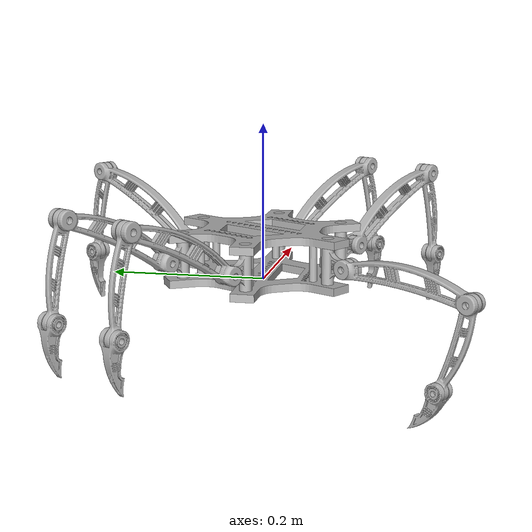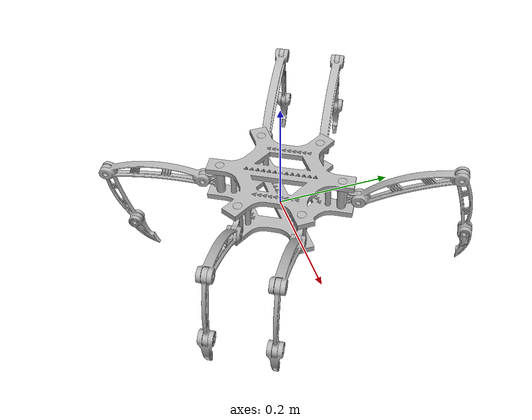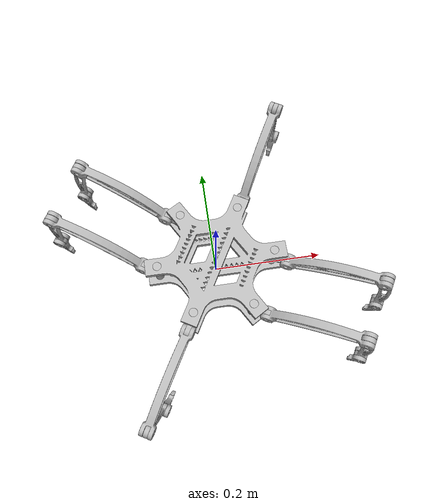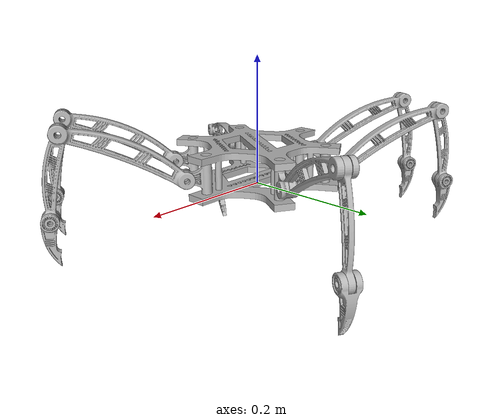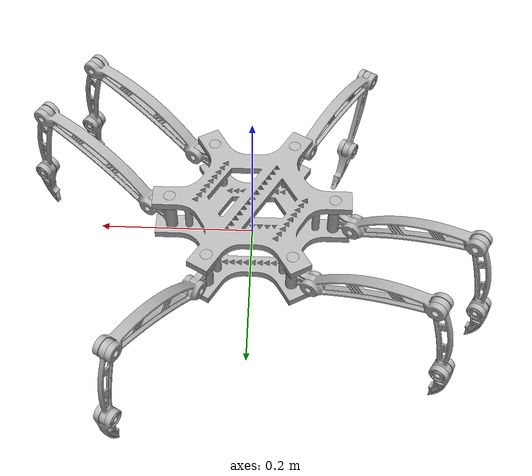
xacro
<?xml version="1.0" ?>
<robot name="spiderbot_urdf_model_final" xmlns:xacro="http://www.ros.org/wiki/xacro">

<xacro:include filename="$(find spiderbot_urdf_model_final_description)/urdf/materials.xacro" />
<xacro:include filename="$(find spiderbot_urdf_model_final_description)/urdf/spiderbot_urdf_model_final.trans" />
<xacro:include filename="$(find spiderbot_urdf_model_final_description)/urdf/spiderbot_urdf_model_final.gazebo" />
<link name="base_link">
  <inertial>
    <origin rpy="0 0 0" xyz="2.6809392293062096e-05 -4.643522955664628e-05 0.033799999999999816"/>
    <mass value="3.423316766776228"/>
    <inertia ixx="0.013718" ixy="-0.000137" ixz="8e-06" iyy="0.013876" iyz="5e-06" izz="0.022087"/>
  </inertial>
  <visual>
    <origin rpy="0 0 0" xyz="0 0 0"/>
    <geometry>
      <mesh filename="package://spiderbot_urdf_model_final_description/meshes/base_link.stl" scale="0.001 0.001 0.001"/>
    </geometry>
    <material name="silver"/>
  </visual>
  <collision>
    <origin rpy="0 0 0" xyz="0 0 0"/>
    <geometry>
      <mesh filename="package://spiderbot_urdf_model_final_description/meshes/base_link.stl" scale="0.001 0.001 0.001"/>
    </geometry>
  </collision>
</link>

<link name="L3_1">
  <inertial>
    <origin rpy="0 0 0" xyz="-9.535726718429283e-05 0.0089554467100606 -0.01512831865838865"/>
    <mass value="0.08507758327600112"/>
    <inertia ixx="3.3e-05" ixy="-3e-06" ixz="6e-06" iyy="2.9e-05" iyz="1.1e-05" izz="1.4e-05"/>
  </inertial>
  <visual>
    <origin rpy="0 0 0" xyz="0.133449 0.2402 0.093132"/>
    <geometry>
      <mesh filename="package://spiderbot_urdf_model_final_description/meshes/L3_1.stl" scale="0.001 0.001 0.001"/>
    </geometry>
    <material name="silver"/>
  </visual>
  <collision>
    <origin rpy="0 0 0" xyz="0.133449 0.2402 0.093132"/>
    <geometry>
      <mesh filename="package://spiderbot_urdf_model_final_description/meshes/L3_1.stl" scale="0.001 0.001 0.001"/>
    </geometry>
  </collision>
</link>

<link name="L2_1">
  <inertial>
    <origin rpy="0 0 0" xyz="0.0054481249084034344 0.018378388735601603 -0.05539905539281395"/>
    <mass value="0.10556026695885269"/>
    <inertia ixx="0.000242" ixy="-1.4e-05" ixz="3.8e-05" iyy="0.000226" iyz="6.6e-05" izz="3.3e-05"/>
  </inertial>
  <visual>
    <origin rpy="0 0 0" xyz="0.153946 0.275642 -0.019668"/>
    <geometry>
      <mesh filename="package://spiderbot_urdf_model_final_description/meshes/L2_1.stl" scale="0.001 0.001 0.001"/>
    </geometry>
    <material name="silver"/>
  </visual>
  <collision>
    <origin rpy="0 0 0" xyz="0.153946 0.275642 -0.019668"/>
    <geometry>
      <mesh filename="package://spiderbot_urdf_model_final_description/meshes/L2_1.stl" scale="0.001 0.001 0.001"/>
    </geometry>
  </collision>
</link>

<link name="L1_1">
  <inertial>
    <origin rpy="0 0 0" xyz="-0.04810589100224351 -0.0741378061694888 -0.0027082795290349244"/>
    <mass value="0.29510328391513424"/>
    <inertia ixx="0.000952" ixy="-0.000525" ixz="-4.4e-05" iyy="0.000346" iyz="-7.6e-05" izz="0.001232"/>
  </inertial>
  <visual>
    <origin rpy="0 0 0" xyz="0.064223 0.120238 -0.0338"/>
    <geometry>
      <mesh filename="package://spiderbot_urdf_model_final_description/meshes/L1_1.stl" scale="0.001 0.001 0.001"/>
    </geometry>
    <material name="silver"/>
  </visual>
  <collision>
    <origin rpy="0 0 0" xyz="0.064223 0.120238 -0.0338"/>
    <geometry>
      <mesh filename="package://spiderbot_urdf_model_final_description/meshes/L1_1.stl" scale="0.001 0.001 0.001"/>
    </geometry>
  </collision>
</link>

<link name="Hinge_1">
  <inertial>
    <origin rpy="0 0 0" xyz="-0.003170256289144212 -0.005491189080670492 -0.0337999999999949"/>
    <mass value="0.13570338096793705"/>
    <inertia ixx="5.6e-05" ixy="-8e-06" ixz="0.0" iyy="4.7e-05" iyz="0.0" izz="2.3e-05"/>
  </inertial>
  <visual>
    <origin rpy="0 0 0" xyz="0.053121 0.092008 -0.0676"/>
    <geometry>
      <mesh filename="package://spiderbot_urdf_model_final_description/meshes/Hinge_1.stl" scale="0.001 0.001 0.001"/>
    </geometry>
    <material name="silver"/>
  </visual>
  <collision>
    <origin rpy="0 0 0" xyz="0.053121 0.092008 -0.0676"/>
    <geometry>
      <mesh filename="package://spiderbot_urdf_model_final_description/meshes/Hinge_1.stl" scale="0.001 0.001 0.001"/>
    </geometry>
  </collision>
</link>

<link name="L3_2">
  <inertial>
    <origin rpy="0 0 0" xyz="-0.0014905093816917903 -0.004360052749155741 -0.016955511504603792"/>
    <mass value="0.08507758327600112"/>
    <inertia ixx="3.5e-05" ixy="-0.0" ixz="-1e-06" iyy="3.5e-05" iyz="0.0" izz="6e-06"/>
  </inertial>
  <visual>
    <origin rpy="0 0 0" xyz="-0.240191 0.194817 0.006875"/>
    <geometry>
      <mesh filename="package://spiderbot_urdf_model_final_description/meshes/L3_2.stl" scale="0.001 0.001 0.001"/>
    </geometry>
    <material name="silver"/>
  </visual>
  <collision>
    <origin rpy="0 0 0" xyz="-0.240191 0.194817 0.006875"/>
    <geometry>
      <mesh filename="package://spiderbot_urdf_model_final_description/meshes/L3_2.stl" scale="0.001 0.001 0.001"/>
    </geometry>
  </collision>
</link>

<link name="L2_2">
  <inertial>
    <origin rpy="0 0 0" xyz="0.0077730568438748315 -0.00965074089206519 -0.05729636494851689"/>
    <mass value="0.10556026695885269"/>
    <inertia ixx="0.000241" ixy="5e-06" ixz="3.6e-05" iyy="0.000247" iyz="-2.1e-05" izz="1.3e-05"/>
  </inertial>
  <visual>
    <origin rpy="0 0 0" xyz="-0.222054 0.184345 -0.111283"/>
    <geometry>
      <mesh filename="package://spiderbot_urdf_model_final_description/meshes/L2_2.stl" scale="0.001 0.001 0.001"/>
    </geometry>
    <material name="silver"/>
  </visual>
  <collision>
    <origin rpy="0 0 0" xyz="-0.222054 0.184345 -0.111283"/>
    <geometry>
      <mesh filename="package://spiderbot_urdf_model_final_description/meshes/L2_2.stl" scale="0.001 0.001 0.001"/>
    </geometry>
  </collision>
</link>

<link name="L1_2">
  <inertial>
    <origin rpy="0 0 0" xyz="0.0650704277368272 -0.04287078558611905 0.04178339207835309"/>
    <mass value="0.29510328391513424"/>
    <inertia ixx="0.000512" ixy="0.000429" ixz="-0.000408" iyy="0.001008" iyz="0.000236" izz="0.001011"/>
  </inertial>
  <visual>
    <origin rpy="0 0 0" xyz="-0.081351 0.10311 -0.0338"/>
    <geometry>
      <mesh filename="package://spiderbot_urdf_model_final_description/meshes/L1_2.stl" scale="0.001 0.001 0.001"/>
    </geometry>
    <material name="silver"/>
  </visual>
  <collision>
    <origin rpy="0 0 0" xyz="-0.081351 0.10311 -0.0338"/>
    <geometry>
      <mesh filename="package://spiderbot_urdf_model_final_description/meshes/L1_2.stl" scale="0.001 0.001 0.001"/>
    </geometry>
  </collision>
</link>

<link name="Hinge_2">
  <inertial>
    <origin rpy="0 0 0" xyz="0.005491222070922848 -0.0031702232988920914 -0.03379999999999489"/>
    <mass value="0.13570338096793705"/>
    <inertia ixx="4.7e-05" ixy="8e-06" ixz="-0.0" iyy="5.6e-05" iyz="0.0" izz="2.3e-05"/>
  </inertial>
  <visual>
    <origin rpy="0 0 0" xyz="-0.053121 0.092008 -0.0676"/>
    <geometry>
      <mesh filename="package://spiderbot_urdf_model_final_description/meshes/Hinge_2.stl" scale="0.001 0.001 0.001"/>
    </geometry>
    <material name="silver"/>
  </visual>
  <collision>
    <origin rpy="0 0 0" xyz="-0.053121 0.092008 -0.0676"/>
    <geometry>
      <mesh filename="package://spiderbot_urdf_model_final_description/meshes/Hinge_2.stl" scale="0.001 0.001 0.001"/>
    </geometry>
  </collision>
</link>

<link name="L3_3">
  <inertial>
    <origin rpy="0 0 0" xyz="-0.0014909245702488527 -0.004360500927964625 -0.016955511504604077"/>
    <mass value="0.08507758327600112"/>
    <inertia ixx="3.5e-05" ixy="-0.0" ixz="-1e-06" iyy="3.5e-05" iyz="0.0" izz="6e-06"/>
  </inertial>
  <visual>
    <origin rpy="0 0 0" xyz="-0.293312 0.102809 0.006875"/>
    <geometry>
      <mesh filename="package://spiderbot_urdf_model_final_description/meshes/L3_3.stl" scale="0.001 0.001 0.001"/>
    </geometry>
    <material name="silver"/>
  </visual>
  <collision>
    <origin rpy="0 0 0" xyz="-0.293312 0.102809 0.006875"/>
    <geometry>
      <mesh filename="package://spiderbot_urdf_model_final_description/meshes/L3_3.stl" scale="0.001 0.001 0.001"/>
    </geometry>
  </collision>
</link>

<link name="L2_3">
  <inertial>
    <origin rpy="0 0 0" xyz="0.0077726416553176025 -0.009650189070874032 -0.05729636494851709"/>
    <mass value="0.10556026695885269"/>
    <inertia ixx="0.000241" ixy="5e-06" ixz="3.6e-05" iyy="0.000247" iyz="-2.1e-05" izz="1.3e-05"/>
  </inertial>
  <visual>
    <origin rpy="0 0 0" xyz="-0.275175 0.092338 -0.111283"/>
    <geometry>
      <mesh filename="package://spiderbot_urdf_model_final_description/meshes/L2_3.stl" scale="0.001 0.001 0.001"/>
    </geometry>
    <material name="silver"/>
  </visual>
  <collision>
    <origin rpy="0 0 0" xyz="-0.275175 0.092338 -0.111283"/>
    <geometry>
      <mesh filename="package://spiderbot_urdf_model_final_description/meshes/L2_3.stl" scale="0.001 0.001 0.001"/>
    </geometry>
  </collision>
</link>

<link name="L1_3">
  <inertial>
    <origin rpy="0 0 0" xyz="0.06507001254826986 -0.04287023376492771 0.04178339207835281"/>
    <mass value="0.29510328391513424"/>
    <inertia ixx="0.000512" ixy="0.000429" ixz="-0.000408" iyy="0.001008" iyz="0.000236" izz="0.001011"/>
  </inertial>
  <visual>
    <origin rpy="0 0 0" xyz="-0.134472 0.011103 -0.0338"/>
    <geometry>
      <mesh filename="package://spiderbot_urdf_model_final_description/meshes/L1_3.stl" scale="0.001 0.001 0.001"/>
    </geometry>
    <material name="silver"/>
  </visual>
  <collision>
    <origin rpy="0 0 0" xyz="-0.134472 0.011103 -0.0338"/>
    <geometry>
      <mesh filename="package://spiderbot_urdf_model_final_description/meshes/L1_3.stl" scale="0.001 0.001 0.001"/>
    </geometry>
  </collision>
</link>

<link name="Hinge_3">
  <inertial>
    <origin rpy="0 0 0" xyz="0.005491806882365571 -0.0031706714777008215 -0.03379999999999489"/>
    <mass value="0.13570338096793705"/>
    <inertia ixx="4.7e-05" ixy="8e-06" ixz="-0.0" iyy="5.6e-05" iyz="0.0" izz="2.3e-05"/>
  </inertial>
  <visual>
    <origin rpy="0 0 0" xyz="-0.106241 -0.0 -0.0676"/>
    <geometry>
      <mesh filename="package://spiderbot_urdf_model_final_description/meshes/Hinge_3.stl" scale="0.001 0.001 0.001"/>
    </geometry>
    <material name="silver"/>
  </visual>
  <collision>
    <origin rpy="0 0 0" xyz="-0.106241 -0.0 -0.0676"/>
    <geometry>
      <mesh filename="package://spiderbot_urdf_model_final_description/meshes/Hinge_3.stl" scale="0.001 0.001 0.001"/>
    </geometry>
  </collision>
</link>

<link name="L3_4">
  <inertial>
    <origin rpy="0 0 0" xyz="0.004360085739407937 -0.0014905423719440147 -0.016955511504604264"/>
    <mass value="0.08507758327600112"/>
    <inertia ixx="3.5e-05" ixy="0.0" ixz="-0.0" iyy="3.5e-05" iyz="-1e-06" izz="6e-06"/>
  </inertial>
  <visual>
    <origin rpy="0 0 0" xyz="-0.15593 -0.279078 0.006875"/>
    <geometry>
      <mesh filename="package://spiderbot_urdf_model_final_description/meshes/L3_4.stl" scale="0.001 0.001 0.001"/>
    </geometry>
    <material name="silver"/>
  </visual>
  <collision>
    <origin rpy="0 0 0" xyz="-0.15593 -0.279078 0.006875"/>
    <geometry>
      <mesh filename="package://spiderbot_urdf_model_final_description/meshes/L3_4.stl" scale="0.001 0.001 0.001"/>
    </geometry>
  </collision>
</link>

<link name="L2_4">
  <inertial>
    <origin rpy="0 0 0" xyz="0.009650773882317387 0.0077730238536225515 -0.05729636494851703"/>
    <mass value="0.10556026695885269"/>
    <inertia ixx="0.000247" ixy="-5e-06" ixz="2.1e-05" iyy="0.000241" iyz="3.6e-05" izz="1.3e-05"/>
  </inertial>
  <visual>
    <origin rpy="0 0 0" xyz="-0.145458 -0.260941 -0.111283"/>
    <geometry>
      <mesh filename="package://spiderbot_urdf_model_final_description/meshes/L2_4.stl" scale="0.001 0.001 0.001"/>
    </geometry>
    <material name="silver"/>
  </visual>
  <collision>
    <origin rpy="0 0 0" xyz="-0.145458 -0.260941 -0.111283"/>
    <geometry>
      <mesh filename="package://spiderbot_urdf_model_final_description/meshes/L2_4.stl" scale="0.001 0.001 0.001"/>
    </geometry>
  </collision>
</link>

<link name="L1_4">
  <inertial>
    <origin rpy="0 0 0" xyz="0.04287081857637112 0.06507039474657487 0.041783392078352966"/>
    <mass value="0.29510328391513424"/>
    <inertia ixx="0.001008" ixy="-0.000429" ixz="-0.000236" iyy="0.000512" iyz="-0.000408" izz="0.001011"/>
  </inertial>
  <visual>
    <origin rpy="0 0 0" xyz="-0.064223 -0.120238 -0.0338"/>
    <geometry>
      <mesh filename="package://spiderbot_urdf_model_final_description/meshes/L1_4.stl" scale="0.001 0.001 0.001"/>
    </geometry>
    <material name="silver"/>
  </visual>
  <collision>
    <origin rpy="0 0 0" xyz="-0.064223 -0.120238 -0.0338"/>
    <geometry>
      <mesh filename="package://spiderbot_urdf_model_final_description/meshes/L1_4.stl" scale="0.001 0.001 0.001"/>
    </geometry>
  </collision>
</link>

<link name="Hinge_4">
  <inertial>
    <origin rpy="0 0 0" xyz="0.0031702562891442188 0.005491189080670492 -0.0337999999999949"/>
    <mass value="0.13570338096793705"/>
    <inertia ixx="5.6e-05" ixy="-8e-06" ixz="-0.0" iyy="4.7e-05" iyz="-0.0" izz="2.3e-05"/>
  </inertial>
  <visual>
    <origin rpy="0 0 0" xyz="-0.053121 -0.092008 -0.0676"/>
    <geometry>
      <mesh filename="package://spiderbot_urdf_model_final_description/meshes/Hinge_4.stl" scale="0.001 0.001 0.001"/>
    </geometry>
    <material name="silver"/>
  </visual>
  <collision>
    <origin rpy="0 0 0" xyz="-0.053121 -0.092008 -0.0676"/>
    <geometry>
      <mesh filename="package://spiderbot_urdf_model_final_description/meshes/Hinge_4.stl" scale="0.001 0.001 0.001"/>
    </geometry>
  </collision>
</link>

<link name="L3_5">
  <inertial>
    <origin rpy="0 0 0" xyz="0.0014905093816914294 0.004360052749155213 -0.016955511504603997"/>
    <mass value="0.08507758327600112"/>
    <inertia ixx="3.5e-05" ixy="-0.0" ixz="1e-06" iyy="3.5e-05" iyz="-0.0" izz="6e-06"/>
  </inertial>
  <visual>
    <origin rpy="0 0 0" xyz="0.240191 -0.194817 0.006875"/>
    <geometry>
      <mesh filename="package://spiderbot_urdf_model_final_description/meshes/L3_5.stl" scale="0.001 0.001 0.001"/>
    </geometry>
    <material name="silver"/>
  </visual>
  <collision>
    <origin rpy="0 0 0" xyz="0.240191 -0.194817 0.006875"/>
    <geometry>
      <mesh filename="package://spiderbot_urdf_model_final_description/meshes/L3_5.stl" scale="0.001 0.001 0.001"/>
    </geometry>
  </collision>
</link>

<link name="L2_5">
  <inertial>
    <origin rpy="0 0 0" xyz="-0.007773056843875387 0.009650740892064524 -0.057296364948517"/>
    <mass value="0.10556026695885269"/>
    <inertia ixx="0.000241" ixy="5e-06" ixz="-3.6e-05" iyy="0.000247" iyz="2.1e-05" izz="1.3e-05"/>
  </inertial>
  <visual>
    <origin rpy="0 0 0" xyz="0.222054 -0.184345 -0.111283"/>
    <geometry>
      <mesh filename="package://spiderbot_urdf_model_final_description/meshes/L2_5.stl" scale="0.001 0.001 0.001"/>
    </geometry>
    <material name="silver"/>
  </visual>
  <collision>
    <origin rpy="0 0 0" xyz="0.222054 -0.184345 -0.111283"/>
    <geometry>
      <mesh filename="package://spiderbot_urdf_model_final_description/meshes/L2_5.stl" scale="0.001 0.001 0.001"/>
    </geometry>
  </collision>
</link>

<link name="L1_5">
  <inertial>
    <origin rpy="0 0 0" xyz="-0.06507042773682764 0.04287078558611836 0.04178339207835291"/>
    <mass value="0.29510328391513424"/>
    <inertia ixx="0.000512" ixy="0.000429" ixz="0.000408" iyy="0.001008" iyz="-0.000236" izz="0.001011"/>
  </inertial>
  <visual>
    <origin rpy="0 0 0" xyz="0.081351 -0.10311 -0.0338"/>
    <geometry>
      <mesh filename="package://spiderbot_urdf_model_final_description/meshes/L1_5.stl" scale="0.001 0.001 0.001"/>
    </geometry>
    <material name="silver"/>
  </visual>
  <collision>
    <origin rpy="0 0 0" xyz="0.081351 -0.10311 -0.0338"/>
    <geometry>
      <mesh filename="package://spiderbot_urdf_model_final_description/meshes/L1_5.stl" scale="0.001 0.001 0.001"/>
    </geometry>
  </collision>
</link>

<link name="Hinge_5">
  <inertial>
    <origin rpy="0 0 0" xyz="-0.005491222070923313 0.0031702232988915086 -0.03379999999999489"/>
    <mass value="0.13570338096793705"/>
    <inertia ixx="4.7e-05" ixy="8e-06" ixz="0.0" iyy="5.6e-05" iyz="-0.0" izz="2.3e-05"/>
  </inertial>
  <visual>
    <origin rpy="0 0 0" xyz="0.053121 -0.092008 -0.0676"/>
    <geometry>
      <mesh filename="package://spiderbot_urdf_model_final_description/meshes/Hinge_5.stl" scale="0.001 0.001 0.001"/>
    </geometry>
    <material name="silver"/>
  </visual>
  <collision>
    <origin rpy="0 0 0" xyz="0.053121 -0.092008 -0.0676"/>
    <geometry>
      <mesh filename="package://spiderbot_urdf_model_final_description/meshes/Hinge_5.stl" scale="0.001 0.001 0.001"/>
    </geometry>
  </collision>
</link>

<link name="L3_6">
  <inertial>
    <origin rpy="0 0 0" xyz="0.0014909245702490748 0.004360500927963612 -0.016955511504603997"/>
    <mass value="0.08507758327600112"/>
    <inertia ixx="3.5e-05" ixy="-0.0" ixz="1e-06" iyy="3.5e-05" iyz="-0.0" izz="6e-06"/>
  </inertial>
  <visual>
    <origin rpy="0 0 0" xyz="0.293312 -0.102809 0.006875"/>
    <geometry>
      <mesh filename="package://spiderbot_urdf_model_final_description/meshes/L3_6.stl" scale="0.001 0.001 0.001"/>
    </geometry>
    <material name="silver"/>
  </visual>
  <collision>
    <origin rpy="0 0 0" xyz="0.293312 -0.102809 0.006875"/>
    <geometry>
      <mesh filename="package://spiderbot_urdf_model_final_description/meshes/L3_6.stl" scale="0.001 0.001 0.001"/>
    </geometry>
  </collision>
</link>

<link name="L2_6">
  <inertial>
    <origin rpy="0 0 0" xyz="-0.007772641655317325 0.009650189070873005 -0.05729636494851696"/>
    <mass value="0.10556026695885269"/>
    <inertia ixx="0.000241" ixy="5e-06" ixz="-3.6e-05" iyy="0.000247" iyz="2.1e-05" izz="1.3e-05"/>
  </inertial>
  <visual>
    <origin rpy="0 0 0" xyz="0.275175 -0.092338 -0.111283"/>
    <geometry>
      <mesh filename="package://spiderbot_urdf_model_final_description/meshes/L2_6.stl" scale="0.001 0.001 0.001"/>
    </geometry>
    <material name="silver"/>
  </visual>
  <collision>
    <origin rpy="0 0 0" xyz="0.275175 -0.092338 -0.111283"/>
    <geometry>
      <mesh filename="package://spiderbot_urdf_model_final_description/meshes/L2_6.stl" scale="0.001 0.001 0.001"/>
    </geometry>
  </collision>
</link>

<link name="L1_6">
  <inertial>
    <origin rpy="0 0 0" xyz="-0.06507001254826972 0.042870233764926755 0.041783392078352896"/>
    <mass value="0.29510328391513424"/>
    <inertia ixx="0.000512" ixy="0.000429" ixz="0.000408" iyy="0.001008" iyz="-0.000236" izz="0.001011"/>
  </inertial>
  <visual>
    <origin rpy="0 0 0" xyz="0.134472 -0.011103 -0.0338"/>
    <geometry>
      <mesh filename="package://spiderbot_urdf_model_final_description/meshes/L1_6.stl" scale="0.001 0.001 0.001"/>
    </geometry>
    <material name="silver"/>
  </visual>
  <collision>
    <origin rpy="0 0 0" xyz="0.134472 -0.011103 -0.0338"/>
    <geometry>
      <mesh filename="package://spiderbot_urdf_model_final_description/meshes/L1_6.stl" scale="0.001 0.001 0.001"/>
    </geometry>
  </collision>
</link>

<link name="Hinge_6">
  <inertial>
    <origin rpy="0 0 0" xyz="-0.005491806882365488 0.0031706714776999333 -0.03379999999999489"/>
    <mass value="0.13570338096793705"/>
    <inertia ixx="4.7e-05" ixy="8e-06" ixz="0.0" iyy="5.6e-05" iyz="-0.0" izz="2.3e-05"/>
  </inertial>
  <visual>
    <origin rpy="0 0 0" xyz="0.106241 0.0 -0.0676"/>
    <geometry>
      <mesh filename="package://spiderbot_urdf_model_final_description/meshes/Hinge_6.stl" scale="0.001 0.001 0.001"/>
    </geometry>
    <material name="silver"/>
  </visual>
  <collision>
    <origin rpy="0 0 0" xyz="0.106241 0.0 -0.0676"/>
    <geometry>
      <mesh filename="package://spiderbot_urdf_model_final_description/meshes/Hinge_6.stl" scale="0.001 0.001 0.001"/>
    </geometry>
  </collision>
</link>

<joint name="Rev28" type="continuous">
  <origin rpy="0 0 0" xyz="0.020497 0.035442 -0.1128"/>
  <parent link="L2_1"/>
  <child link="L3_1"/>
  <axis xyz="-0.866025 0.5 -0.0"/>
</joint>

<joint name="Rev29" type="continuous">
  <origin rpy="0 0 0" xyz="-0.089723 -0.155404 -0.014132"/>
  <parent link="L1_1"/>
  <child link="L2_1"/>
  <axis xyz="0.866025 -0.5 0.0"/>
</joint>

<joint name="Rev30" type="continuous">
  <origin rpy="0 0 0" xyz="-0.011102 -0.02823 -0.0338"/>
  <parent link="Hinge_1"/>
  <child link="L1_1"/>
  <axis xyz="0.866025 -0.5 0.0"/>
</joint>

<joint name="Rev31" type="continuous">
  <origin rpy="0 0 0" xyz="-0.053121 -0.092008 0.0676"/>
  <parent link="base_link"/>
  <child link="Hinge_1"/>
  <axis xyz="0.0 0.0 1.0"/>
</joint>

<joint name="Rev32" type="continuous">
  <origin rpy="0 0 0" xyz="0.018137 -0.010472 -0.118158"/>
  <parent link="L2_2"/>
  <child link="L3_2"/>
  <axis xyz="0.5 0.866025 0.0"/>
</joint>

<joint name="Rev33" type="continuous">
  <origin rpy="0 0 0" xyz="0.140703 -0.081235 0.077483"/>
  <parent link="L1_2"/>
  <child link="L2_2"/>
  <axis xyz="0.5 0.866025 0.0"/>
</joint>

<joint name="Rev34" type="continuous">
  <origin rpy="0 0 0" xyz="0.02823 -0.011102 -0.0338"/>
  <parent link="Hinge_2"/>
  <child link="L1_2"/>
  <axis xyz="0.5 0.866025 0.0"/>
</joint>

<joint name="Rev35" type="continuous">
  <origin rpy="0 0 0" xyz="0.053121 -0.092008 0.0676"/>
  <parent link="base_link"/>
  <child link="Hinge_2"/>
  <axis xyz="0.0 0.0 1.0"/>
</joint>

<joint name="Rev36" type="continuous">
  <origin rpy="0 0 0" xyz="0.018137 -0.010471 -0.118158"/>
  <parent link="L2_3"/>
  <child link="L3_3"/>
  <axis xyz="0.5 0.866025 0.0"/>
</joint>

<joint name="Rev37" type="continuous">
  <origin rpy="0 0 0" xyz="0.140703 -0.081235 0.077483"/>
  <parent link="L1_3"/>
  <child link="L2_3"/>
  <axis xyz="0.5 0.866025 0.0"/>
</joint>

<joint name="Rev38" type="continuous">
  <origin rpy="0 0 0" xyz="0.028231 -0.011103 -0.0338"/>
  <parent link="Hinge_3"/>
  <child link="L1_3"/>
  <axis xyz="0.5 0.866025 0.0"/>
</joint>

<joint name="Rev39" type="continuous">
  <origin rpy="0 0 0" xyz="0.106241 0.0 0.0676"/>
  <parent link="base_link"/>
  <child link="Hinge_3"/>
  <axis xyz="0.0 0.0 1.0"/>
</joint>

<joint name="Rev40" type="continuous">
  <origin rpy="0 0 0" xyz="0.010472 0.018137 -0.118158"/>
  <parent link="L2_4"/>
  <child link="L3_4"/>
  <axis xyz="-0.866025 0.5 0.0"/>
</joint>

<joint name="Rev41" type="continuous">
  <origin rpy="0 0 0" xyz="0.081235 0.140703 0.077483"/>
  <parent link="L1_4"/>
  <child link="L2_4"/>
  <axis xyz="-0.866025 0.5 0.0"/>
</joint>

<joint name="Rev42" type="continuous">
  <origin rpy="0 0 0" xyz="0.011102 0.02823 -0.0338"/>
  <parent link="Hinge_4"/>
  <child link="L1_4"/>
  <axis xyz="-0.866025 0.5 0.0"/>
</joint>

<joint name="Rev43" type="continuous">
  <origin rpy="0 0 0" xyz="0.053121 0.092008 0.0676"/>
  <parent link="base_link"/>
  <child link="Hinge_4"/>
  <axis xyz="0.0 0.0 1.0"/>
</joint>

<joint name="Rev44" type="continuous">
  <origin rpy="0 0 0" xyz="-0.018137 0.010472 -0.118158"/>
  <parent link="L2_5"/>
  <child link="L3_5"/>
  <axis xyz="-0.5 -0.866025 0.0"/>
</joint>

<joint name="Rev45" type="continuous">
  <origin rpy="0 0 0" xyz="-0.140703 0.081235 0.077483"/>
  <parent link="L1_5"/>
  <child link="L2_5"/>
  <axis xyz="-0.5 -0.866025 0.0"/>
</joint>

<joint name="Rev46" type="continuous">
  <origin rpy="0 0 0" xyz="-0.02823 0.011102 -0.0338"/>
  <parent link="Hinge_5"/>
  <child link="L1_5"/>
  <axis xyz="-0.5 -0.866025 0.0"/>
</joint>

<joint name="Rev47" type="continuous">
  <origin rpy="0 0 0" xyz="-0.053121 0.092008 0.0676"/>
  <parent link="base_link"/>
  <child link="Hinge_5"/>
  <axis xyz="0.0 0.0 1.0"/>
</joint>

<joint name="Rev48" type="continuous">
  <origin rpy="0 0 0" xyz="-0.018137 0.010471 -0.118158"/>
  <parent link="L2_6"/>
  <child link="L3_6"/>
  <axis xyz="-0.5 -0.866025 0.0"/>
</joint>

<joint name="Rev49" type="continuous">
  <origin rpy="0 0 0" xyz="-0.140703 0.081235 0.077483"/>
  <parent link="L1_6"/>
  <child link="L2_6"/>
  <axis xyz="-0.5 -0.866025 0.0"/>
</joint>

<joint name="Rev50" type="continuous">
  <origin rpy="0 0 0" xyz="-0.028231 0.011103 -0.0338"/>
  <parent link="Hinge_6"/>
  <child link="L1_6"/>
  <axis xyz="-0.5 -0.866025 0.0"/>
</joint>

<joint name="Rev51" type="continuous">
  <origin rpy="0 0 0" xyz="-0.106241 0.0 0.0676"/>
  <parent link="base_link"/>
  <child link="Hinge_6"/>
  <axis xyz="0.0 0.0 1.0"/>
</joint>

</robot>

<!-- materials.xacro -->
<robot name="spiderbot_urdf_model_final" xmlns:xacro="http://www.ros.org/wiki/xacro" >

<material name="silver">
  <color rgba="0.700 0.700 0.700 1.000"/>
</material>

</robot>

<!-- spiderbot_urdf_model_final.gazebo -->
<robot name="spiderbot_urdf_model_final" xmlns:xacro="http://www.ros.org/wiki/xacro" >

<xacro:property name="body_color" value="Gazebo/Silver" />

<gazebo>
  <plugin filename="libgazebo_ros_control.so" name="control"/>
</gazebo>
<gazebo reference="base_link">
  <material>${body_color}</material>
  <mu1>0.2</mu1>
  <mu2>0.2</mu2>
  <selfCollide>true</selfCollide>
  <gravity>true</gravity>
</gazebo>

<gazebo reference="L3_1">
  <material>${body_color}</material>
  <mu1>0.2</mu1>
  <mu2>0.2</mu2>
  <selfCollide>true</selfCollide>
</gazebo>

<gazebo reference="L2_1">
  <material>${body_color}</material>
  <mu1>0.2</mu1>
  <mu2>0.2</mu2>
  <selfCollide>true</selfCollide>
</gazebo>

<gazebo reference="L1_1">
  <material>${body_color}</material>
  <mu1>0.2</mu1>
  <mu2>0.2</mu2>
  <selfCollide>true</selfCollide>
</gazebo>

<gazebo reference="Hinge_1">
  <material>${body_color}</material>
  <mu1>0.2</mu1>
  <mu2>0.2</mu2>
  <selfCollide>true</selfCollide>
</gazebo>

<gazebo reference="L3_2">
  <material>${body_color}</material>
  <mu1>0.2</mu1>
  <mu2>0.2</mu2>
  <selfCollide>true</selfCollide>
</gazebo>

<gazebo reference="L2_2">
  <material>${body_color}</material>
  <mu1>0.2</mu1>
  <mu2>0.2</mu2>
  <selfCollide>true</selfCollide>
</gazebo>

<gazebo reference="L1_2">
  <material>${body_color}</material>
  <mu1>0.2</mu1>
  <mu2>0.2</mu2>
  <selfCollide>true</selfCollide>
</gazebo>

<gazebo reference="Hinge_2">
  <material>${body_color}</material>
  <mu1>0.2</mu1>
  <mu2>0.2</mu2>
  <selfCollide>true</selfCollide>
</gazebo>

<gazebo reference="L3_3">
  <material>${body_color}</material>
  <mu1>0.2</mu1>
  <mu2>0.2</mu2>
  <selfCollide>true</selfCollide>
</gazebo>

<gazebo reference="L2_3">
  <material>${body_color}</material>
  <mu1>0.2</mu1>
  <mu2>0.2</mu2>
  <selfCollide>true</selfCollide>
</gazebo>

<gazebo reference="L1_3">
  <material>${body_color}</material>
  <mu1>0.2</mu1>
  <mu2>0.2</mu2>
  <selfCollide>true</selfCollide>
</gazebo>

<gazebo reference="Hinge_3">
  <material>${body_color}</material>
  <mu1>0.2</mu1>
  <mu2>0.2</mu2>
  <selfCollide>true</selfCollide>
</gazebo>

<gazebo reference="L3_4">
  <material>${body_color}</material>
  <mu1>0.2</mu1>
  <mu2>0.2</mu2>
  <selfCollide>true</selfCollide>
</gazebo>

<gazebo reference="L2_4">
  <material>${body_color}</material>
  <mu1>0.2</mu1>
  <mu2>0.2</mu2>
  <selfCollide>true</selfCollide>
</gazebo>

<gazebo reference="L1_4">
  <material>${body_color}</material>
  <mu1>0.2</mu1>
  <mu2>0.2</mu2>
  <selfCollide>true</selfCollide>
</gazebo>

<gazebo reference="Hinge_4">
  <material>${body_color}</material>
  <mu1>0.2</mu1>
  <mu2>0.2</mu2>
  <selfCollide>true</selfCollide>
</gazebo>

<gazebo reference="L3_5">
  <material>${body_color}</material>
  <mu1>0.2</mu1>
  <mu2>0.2</mu2>
  <selfCollide>true</selfCollide>
</gazebo>

<gazebo reference="L2_5">
  <material>${body_color}</material>
  <mu1>0.2</mu1>
  <mu2>0.2</mu2>
  <selfCollide>true</selfCollide>
</gazebo>

<gazebo reference="L1_5">
  <material>${body_color}</material>
  <mu1>0.2</mu1>
  <mu2>0.2</mu2>
  <selfCollide>true</selfCollide>
</gazebo>

<gazebo reference="Hinge_5">
  <material>${body_color}</material>
  <mu1>0.2</mu1>
  <mu2>0.2</mu2>
  <selfCollide>true</selfCollide>
</gazebo>

<gazebo reference="L3_6">
  <material>${body_color}</material>
  <mu1>0.2</mu1>
  <mu2>0.2</mu2>
  <selfCollide>true</selfCollide>
</gazebo>

<gazebo reference="L2_6">
  <material>${body_color}</material>
  <mu1>0.2</mu1>
  <mu2>0.2</mu2>
  <selfCollide>true</selfCollide>
</gazebo>

<gazebo reference="L1_6">
  <material>${body_color}</material>
  <mu1>0.2</mu1>
  <mu2>0.2</mu2>
  <selfCollide>true</selfCollide>
</gazebo>

<gazebo reference="Hinge_6">
  <material>${body_color}</material>
  <mu1>0.2</mu1>
  <mu2>0.2</mu2>
  <selfCollide>true</selfCollide>
</gazebo>

</robot>
